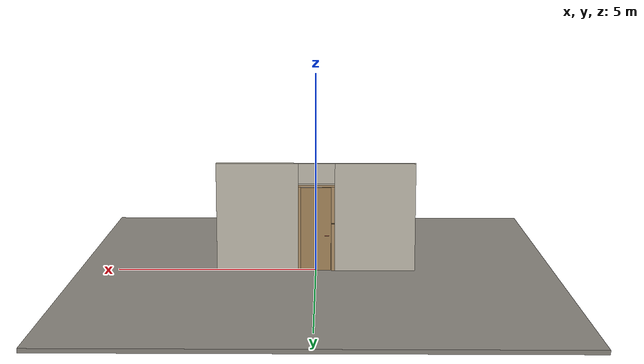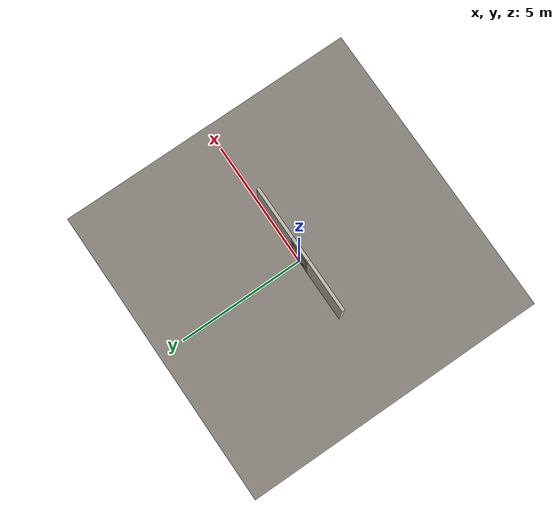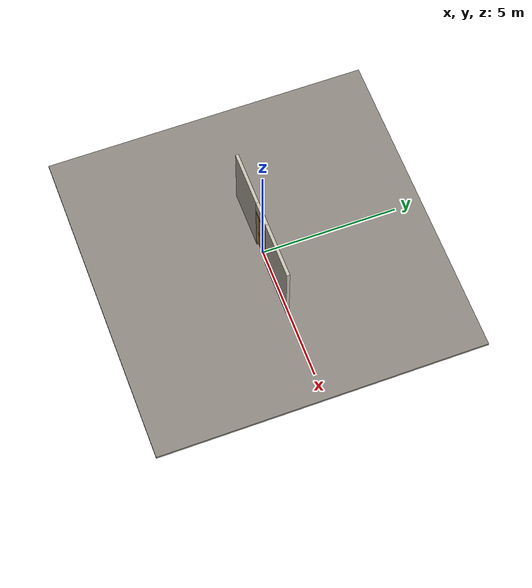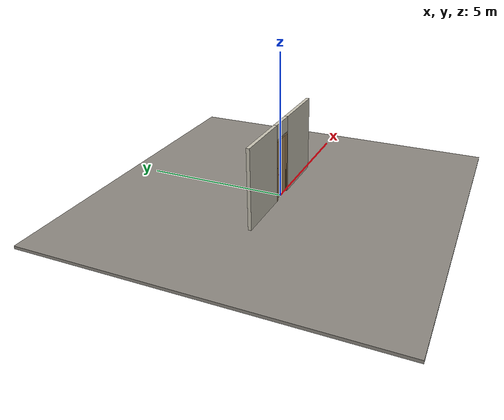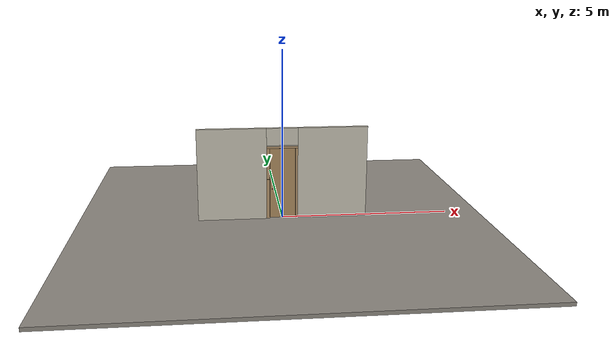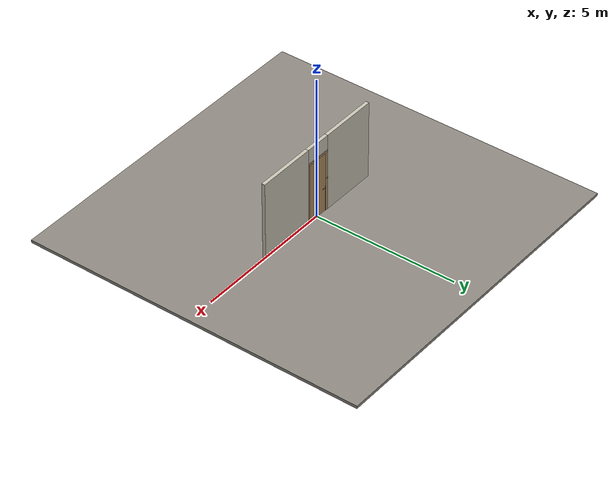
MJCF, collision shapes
<?xml version="1.0" ?>
<mujoco model="db0855_swing_single_minimal">
  <compiler angle="radian" meshdir="../../hardware" texturedir="../../textures" autolimits="true" inertiafromgeom="false"/>
  <option timestep="0.002" integrator="implicitfast" cone="elliptic" impratio="10" noslip_iterations="3">
    <flag multiccd="enable"/>
  </option>
  <size memory="16M"/>
  <default>
    <geom condim="4" solref="0.005 1" solimp="0.95 0.99 0.001"/>
    <joint solreflimit="0.005 1" solimplimit="0.95 0.99 0.001"/>
    <tendon solreflimit="0.005 1"/>
    <equality solref="0.002 1"/>
  </default>
  <visual>
    <headlight ambient="0.4 0.4 0.4" diffuse="0.7 0.7 0.7" specular="0.2 0.2 0.2"/>
    <quality shadowsize="4096"/>
    <map znear="0.01" zfar="60"/>
  </visual>
  <asset>
    <mesh name="ring_cc5c941a8a" file="ring_cc5c941a8a.obj"/>
    <material name="mat_floor" rgba="0.55 0.53 0.5 1" specular="0.2" shininess="0.15" reflectance="0"/>
    <material name="mat_wall" rgba="0.78 0.76 0.7 1" specular="0.2" shininess="0.1" reflectance="0"/>
    <material name="mat_hinge" rgba="0.55 0.56 0.58 1" specular="0.8" shininess="0.55" reflectance="0.4"/>
    <material name="mat_leaf" rgba="0.67 0.543 0.367 1" specular="0.2" shininess="0.45" reflectance="0"/>
    <material name="mat_leaf_brace" rgba="0.603 0.489 0.331 1" specular="0.2" shininess="0.2" reflectance="0"/>
    <material name="mat_op_wrought_iron" rgba="0.08 0.08 0.09 1" specular="0.56" shininess="0.25" reflectance="0.24"/>
    <material name="mat_op_brass" rgba="0.85 0.66 0.3 1" specular="0.8" shininess="0.75" reflectance="0.4"/>
    <material name="mat_frame" rgba="0.7 0.58 0.42 1" specular="0.2" shininess="0.5" reflectance="0"/>
    <texture name="skybox" type="skybox" builtin="gradient" rgb1="0.6 0.7 0.85" rgb2="0.9 0.92 0.95" width="256" height="256"/>
  </asset>
  <worldbody>
    <light name="sun" pos="1.5 -2.5 4" dir="-0.3 0.5 -0.8" directional="true" diffuse="0.8 0.8 0.8" specular="0.3 0.3 0.3" castshadow="true"/>
    <light name="fill" pos="-1.5 2.5 3" dir="0.3 -0.5 -0.7" directional="true" diffuse="0.35 0.35 0.4" castshadow="false"/>
    <camera name="robot_view" pos="0 -2.666313 1.812087" xyaxes="1 0 0 0 0.26963 0.962964" fovy="52"/>
    <camera name="far_view" pos="0 2.609312 1.812087" xyaxes="-1 0 0 0 -0.26963 0.962964" fovy="52"/>
    <camera name="iso" pos="-2.004737 -2.244263 2.234138" xyaxes="0.741536 -0.670913 0 0.242917 0.268487 0.932151" fovy="46"/>
    <camera name="detail_handle" pos="-0.095 -0.854 1.185" xyaxes="0.97561 0.219512 0 -0.070934 0.315262 0.94635" fovy="38"/>
    <geom name="floor" type="box" size="6 6 0.05" pos="0 0 -0.05" material="mat_floor" group="0" contype="1" conaffinity="1" friction="0.8 0.005 0.0001" density="2400"/>
    <geom name="wall_left" type="box" size="1.0125 0.0575 1.3735" pos="-1.4875 -0.0285 1.3735" material="mat_wall" group="0" contype="1" conaffinity="1" friction="0.6 0.005 0.0001" density="800"/>
    <geom name="wall_right" type="box" size="1.0275 0.0575 1.3735" pos="1.4725 -0.0285 1.3735" material="mat_wall" group="0" contype="1" conaffinity="1" friction="0.6 0.005 0.0001" density="800"/>
    <geom name="wall_header" type="box" size="0.46 0.0575 0.255" pos="-0.015 -0.0285 2.492" material="mat_wall" group="0" contype="1" conaffinity="1" friction="0.6 0.005 0.0001" density="800"/>
    <geom name="jamb_hinge" type="box" size="0.03 0.0575 1.0735" pos="0.415 -0.0285 1.0735" material="mat_frame" group="0" contype="1" conaffinity="1" friction="0.6 0.005 0.0001" density="750"/>
    <geom name="strike_1215_wall_n" type="box" size="0.045 0.056 0.01" pos="-0.43 -0.03 1.215" material="mat_frame" group="0" contype="1" conaffinity="1" friction="0.6 0.005 0.0001" density="750"/>
    <geom name="strike_1215_wall_p" type="box" size="0.022 0.003 0.01" pos="-0.407 0.045 1.215" material="mat_frame" group="0" contype="1" conaffinity="1" friction="0.6 0.005 0.0001" density="750"/>
    <geom name="strike_1215_back" type="box" size="0.024 0.008 0.01" pos="-0.451 0.034 1.215" material="mat_frame" group="0" contype="1" conaffinity="1" friction="0.6 0.005 0.0001" density="750"/>
    <geom name="jamb_strike_0" type="box" size="0.045 0.0575 0.6025" pos="-0.43 -0.0285 0.6025" material="mat_frame" group="0" contype="1" conaffinity="1" friction="0.6 0.005 0.0001" density="750"/>
    <geom name="jamb_strike_1" type="box" size="0.045 0.0575 0.461" pos="-0.43 -0.0285 1.686" material="mat_frame" group="0" contype="1" conaffinity="1" friction="0.6 0.005 0.0001" density="750"/>
    <geom name="jamb_head" type="box" size="0.46 0.0575 0.03" pos="-0.015 -0.0285 2.177" material="mat_frame" group="0" contype="1" conaffinity="1" friction="0.6 0.005 0.0001" density="750"/>
    <geom name="head_stud" type="box" size="0.46 0.0575 0.015" pos="-0.015 -0.0285 2.222" material="mat_wall" group="0" contype="1" conaffinity="1" friction="0.6 0.005 0.0001" density="500"/>
    <geom name="stop_hinge" type="box" size="0.0055 0.016 1.0735" pos="0.3795 -0.0385 1.0735" material="mat_frame" group="0" contype="1" conaffinity="1" friction="0.6 0.005 0.0001" density="750"/>
    <geom name="stop_strike" type="box" size="0.0055 0.016 1.0735" pos="-0.3795 -0.0385 1.0735" material="mat_frame" group="0" contype="1" conaffinity="1" friction="0.6 0.005 0.0001" density="750"/>
    <geom name="stop_head" type="box" size="0.385 0.016 0.0055" pos="0 -0.0385 2.1415" material="mat_frame" group="0" contype="1" conaffinity="1" friction="0.6 0.005 0.0001" density="750"/>
    <site name="approach_point" pos="0 -1.5 0" quat="1 0 0 0" size="0.05" rgba="0.2 0.9 0.2 0.5" group="4"/>
    <site name="goal_point" pos="0 1.5 0" quat="1 0 0 0" size="0.05" rgba="0.2 0.9 0.2 0.5" group="4"/>
    <site name="door_plane_center" pos="0 0 1.0735" quat="1 0 0 0" size="0.02" rgba="0.2 0.9 0.2 0.5" group="4"/>
    <body name="leaf_riser" pos="0.385 0 0">
      <inertial pos="0 0 0" mass="0.01" quat="1 0 0 0" diaginertia="0.000001 0.000001 0.000001"/>
      <joint name="leaf_rise" type="slide" axis="0 0 1" limited="true" range="0 0.0176" damping="1" armature="0.5"/>
      <body name="leaf" pos="0 0 0">
        <inertial pos="-0.390474 0 1.068045" mass="30.383705" quat="0.500606 -0.50056 -0.499395 -0.499438" diaginertia="1.496482955 11.168707645 12.65119355"/>
        <joint name="leaf_hinge" type="hinge" axis="0 0 -1" pos="-0.003 0.029 0" limited="true" range="0 1.396263" damping="0.179937" frictionloss="1.122697" armature="0.02"/>
        <geom name="leaf_slab" type="box" size="0.381 0.022 1.0618" pos="-0.384 0 1.0708" material="mat_leaf" group="0" contype="1" conaffinity="1" friction="0.35 0.005 0.0001" density="1"/>
        <geom name="leaf_ring_pull_n" type="mesh" mesh="ring_cc5c941a8a" pos="-0.66 -0.022 0.965" quat="0 0 -0.707107 0.707107" material="mat_op_wrought_iron" group="1" contype="0" conaffinity="0" density="3000"/>
        <geom name="leaf_ring_pull_col_n" type="capsule" size="0.008 0.05" pos="-0.66 -0.054 0.905" quat="0.707107 0 0.707107 0" material="mat_op_wrought_iron" group="3" contype="1" conaffinity="1" rgba="0.8 0.3 0.3 0.25" friction="0.7 0.01 0.0001" density="3000"/>
        <geom name="leaf_ring_pull_p" type="mesh" mesh="ring_cc5c941a8a" pos="-0.66 0.022 0.965" quat="0 0 0.707107 0.707107" material="mat_op_wrought_iron" group="1" contype="0" conaffinity="0" density="3000"/>
        <geom name="leaf_ring_pull_col_p" type="capsule" size="0.008 0.05" pos="-0.66 0.054 0.905" quat="0.707107 0 0.707107 0" material="mat_op_wrought_iron" group="3" contype="1" conaffinity="1" rgba="0.8 0.3 0.3 0.25" friction="0.7 0.01 0.0001" density="3000"/>
        <site name="leaf_ring_pull_grip_n" pos="-0.66 -0.054 0.905" quat="1 0 0 0" size="0.012" rgba="0.2 0.9 0.2 0.5" group="4"/>
        <site name="leaf_ring_pull_grip_p" pos="-0.66 0.054 0.905" quat="1 0 0 0" size="0.012" rgba="0.2 0.9 0.2 0.5" group="4"/>
        <site name="leaf_edge_mid" pos="-0.765 0 1.0618" quat="1 0 0 0" size="0.02" rgba="0.2 0.9 0.2 0.5" group="4"/>
      </body>
    </body>
  </worldbody>
  <equality>
    <joint name="leaf_rise_couple" joint1="leaf_rise" joint2="leaf_hinge" polycoef="0 0.005093 0 0 0" active="true"/>
  </equality>
  <sensor>
    <jointpos name="leaf_hinge_pos" joint="leaf_hinge"/>
    <jointvel name="leaf_hinge_vel" joint="leaf_hinge"/>
  </sensor>
</mujoco>
